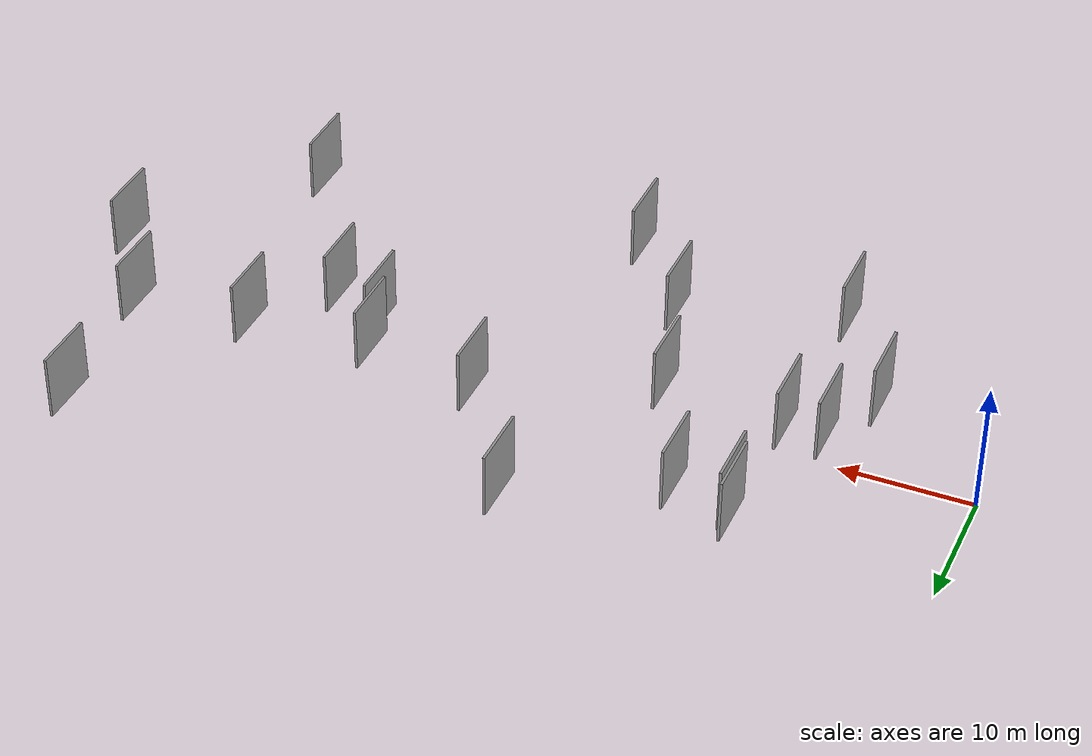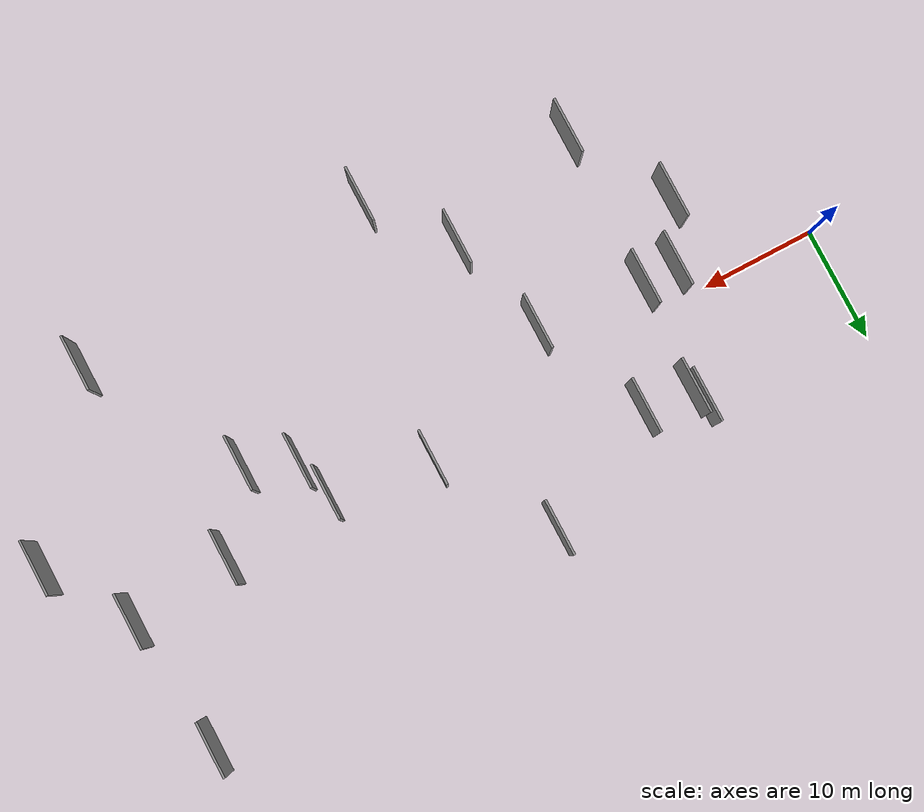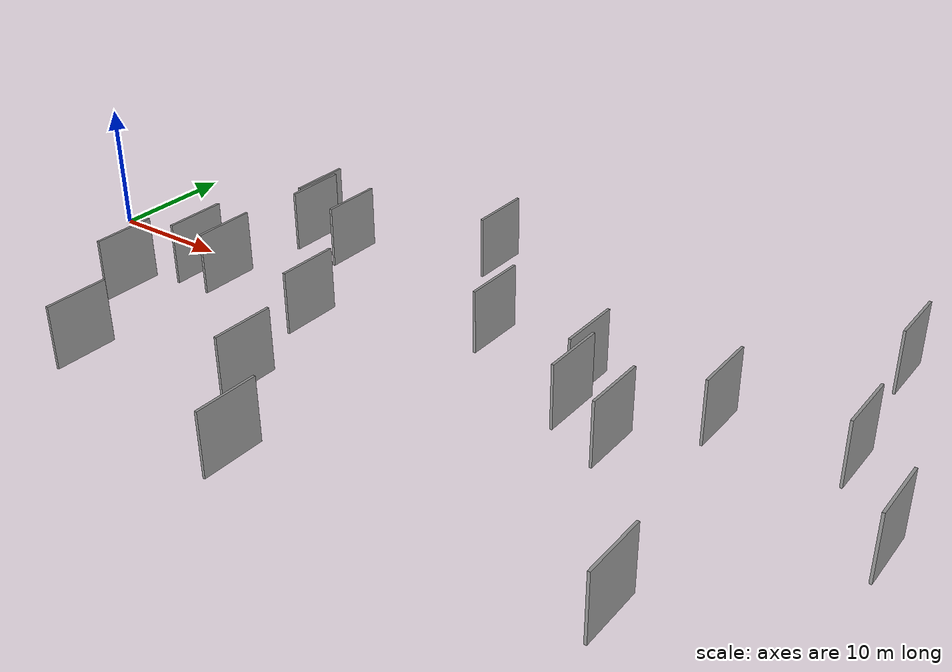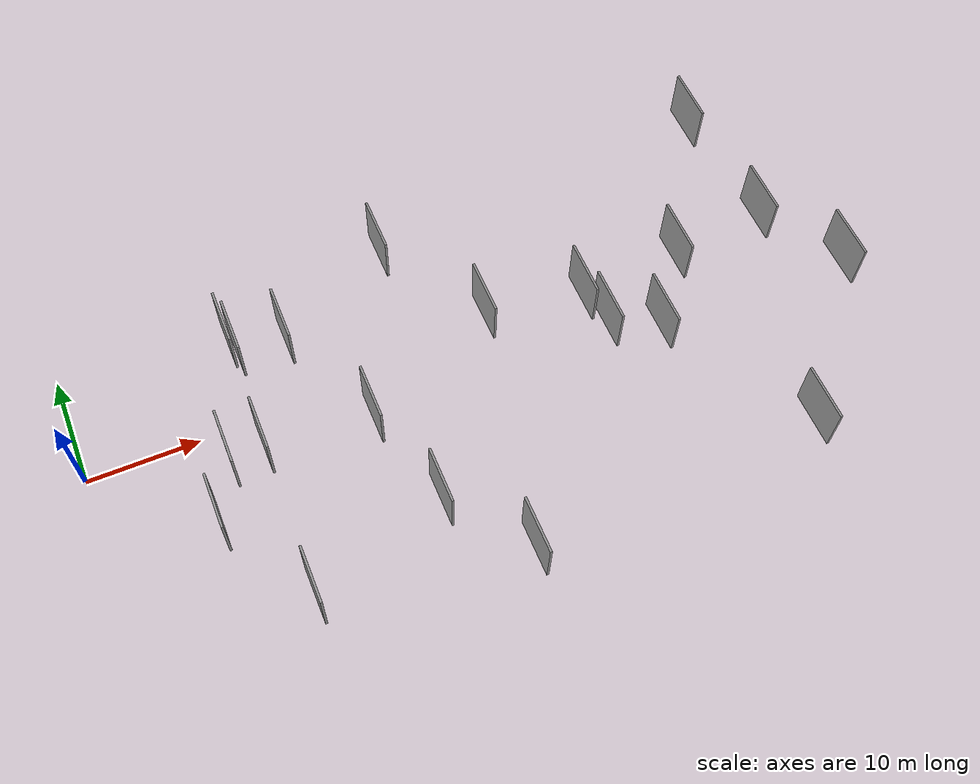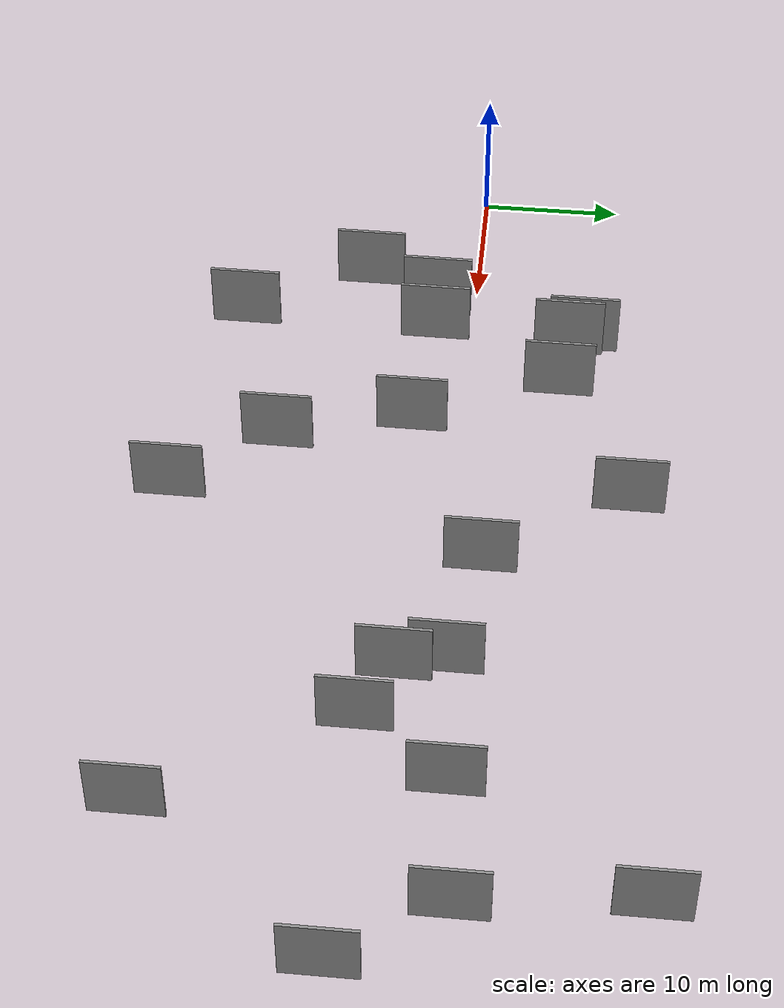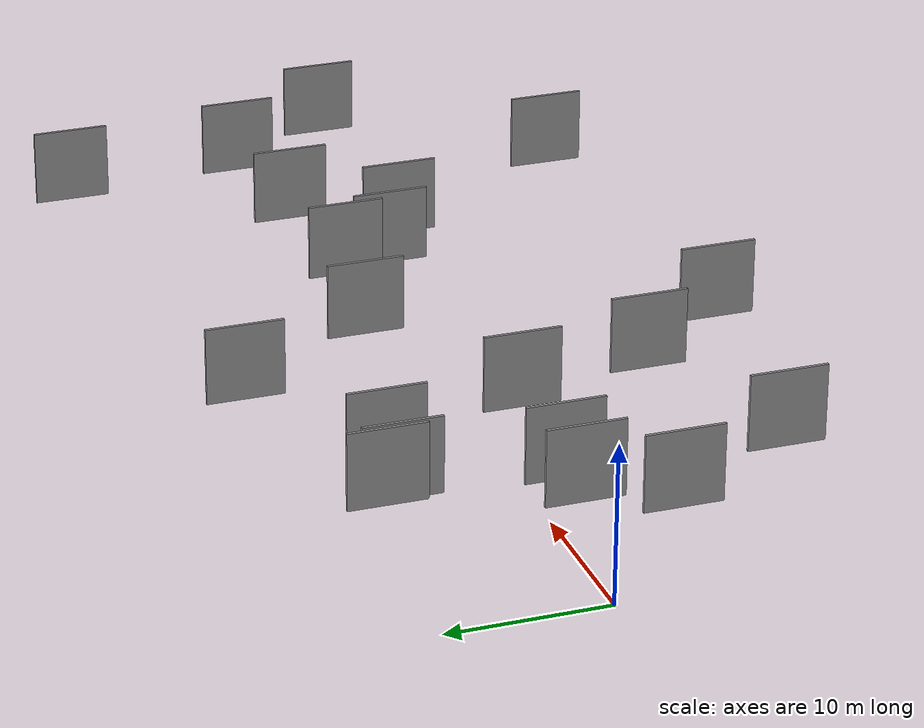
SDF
<sdf version="1.6">
 <world name="default">
  <scene>
   <sky><clouds><speed>12</speed></clouds></sky>
   <ambient>0.4 0.4 0.4 1</ambient>
   <background>0.7 0.7 0.7 1</background>
   <shadows>1</shadows>
  </scene>
  <gravity>0 0 -9.8066</gravity>
  <magnetic_field>6e-06 2.3e-05 -4.2e-05</magnetic_field>
  <physics default="0" name="default_physics" type="ode">
   <ode>
    <solver>
     <type>quick</type>
     <iters>10</iters>
     <sor>1.0</sor>
     <use_dynamic_moi_rescaling>0</use_dynamic_moi_rescaling>
    </solver>
    <constraints>
     <cfm>0</cfm>
     <erp>0.2</erp>
     <contact_max_correcting_vel>100</contact_max_correcting_vel>
     <contact_surface_layer>0.001</contact_surface_layer>
    </constraints>
   </ode>
   <max_step_size>0.004</max_step_size>
   <real_time_factor>1</real_time_factor>
   <real_time_update_rate>250</real_time_update_rate>
  </physics>
  <light name="sun" type="directional">
   <pose>0 0 10 0 0 0</pose>
   <diffuse>0.8 0.8 0.8 1</diffuse>
   <specular>0.2 0.2 0.2 1</specular>
   <attenuation>
    <range>1000</range>
    <constant>0.9</constant>
    <linear>0.01</linear>
    <quadratic>0.001</quadratic>
   </attenuation>
   <direction>-0.5 0.1 -0.9</direction>
  </light>
  <model name="grey_wall_1">
   <static>1</static>
   <pose>55.7279 1.5356 0.0 0.000000 0.000000 1.570796</pose>
   <link name="link">
    <pose>0 0 2.50 0 0 0</pose>
    <collision name="collision"><geometry><box><size>5.00 0.2 5.00</size></box></geometry></collision>
    <visual name="visual">
     <cast_shadows>0</cast_shadows>
     <geometry><box><size>5.00 0.2 5.00</size></box></geometry>
     <material>
      <script>
       <uri>model://grey_wall/materials/scripts</uri>
       <uri>model://grey_wall/materials/textures</uri>
       <name>vrc/grey_wall</name>
      </script>
     </material>
    </visual>
   </link>
  </model>
  <model name="grey_wall_2">
   <static>1</static>
   <pose>37.1053 2.2786 0.0 0.000000 0.000000 1.570796</pose>
   <link name="link">
    <pose>0 0 2.50 0 0 0</pose>
    <collision name="collision"><geometry><box><size>5.00 0.2 5.00</size></box></geometry></collision>
    <visual name="visual">
     <cast_shadows>0</cast_shadows>
     <geometry><box><size>5.00 0.2 5.00</size></box></geometry>
     <material>
      <script>
       <uri>model://grey_wall/materials/scripts</uri>
       <uri>model://grey_wall/materials/textures</uri>
       <name>vrc/grey_wall</name>
      </script>
     </material>
    </visual>
   </link>
  </model>
  <model name="grey_wall_3">
   <static>1</static>
   <pose>24.3750 -3.5481 0.0 0.000000 0.000000 1.570796</pose>
   <link name="link">
    <pose>0 0 2.50 0 0 0</pose>
    <collision name="collision"><geometry><box><size>5.00 0.2 5.00</size></box></geometry></collision>
    <visual name="visual">
     <cast_shadows>0</cast_shadows>
     <geometry><box><size>5.00 0.2 5.00</size></box></geometry>
     <material>
      <script>
       <uri>model://grey_wall/materials/scripts</uri>
       <uri>model://grey_wall/materials/textures</uri>
       <name>vrc/grey_wall</name>
      </script>
     </material>
    </visual>
   </link>
  </model>
  <model name="grey_wall_4">
   <static>1</static>
   <pose>63.5982 14.6535 0.0 0.000000 0.000000 1.570796</pose>
   <link name="link">
    <pose>0 0 2.50 0 0 0</pose>
    <collision name="collision"><geometry><box><size>5.00 0.2 5.00</size></box></geometry></collision>
    <visual name="visual">
     <cast_shadows>0</cast_shadows>
     <geometry><box><size>5.00 0.2 5.00</size></box></geometry>
     <material>
      <script>
       <uri>model://grey_wall/materials/scripts</uri>
       <uri>model://grey_wall/materials/textures</uri>
       <name>vrc/grey_wall</name>
      </script>
     </material>
    </visual>
   </link>
  </model>
  <model name="grey_wall_5">
   <static>1</static>
   <pose>64.8098 2.5495 0.0 0.000000 0.000000 1.570796</pose>
   <link name="link">
    <pose>0 0 2.50 0 0 0</pose>
    <collision name="collision"><geometry><box><size>5.00 0.2 5.00</size></box></geometry></collision>
    <visual name="visual">
     <cast_shadows>0</cast_shadows>
     <geometry><box><size>5.00 0.2 5.00</size></box></geometry>
     <material>
      <script>
       <uri>model://grey_wall/materials/scripts</uri>
       <uri>model://grey_wall/materials/textures</uri>
       <name>vrc/grey_wall</name>
      </script>
     </material>
    </visual>
   </link>
  </model>
  <model name="grey_wall_6">
   <static>1</static>
   <pose>15.4837 7.0637 0.0 0.000000 0.000000 1.570796</pose>
   <link name="link">
    <pose>0 0 2.50 0 0 0</pose>
    <collision name="collision"><geometry><box><size>5.00 0.2 5.00</size></box></geometry></collision>
    <visual name="visual">
     <cast_shadows>0</cast_shadows>
     <geometry><box><size>5.00 0.2 5.00</size></box></geometry>
     <material>
      <script>
       <uri>model://grey_wall/materials/scripts</uri>
       <uri>model://grey_wall/materials/textures</uri>
       <name>vrc/grey_wall</name>
      </script>
     </material>
    </visual>
   </link>
  </model>
  <model name="grey_wall_7">
   <static>1</static>
   <pose>26.9392 -12.7928 0.0 0.000000 0.000000 1.570796</pose>
   <link name="link">
    <pose>0 0 2.50 0 0 0</pose>
    <collision name="collision"><geometry><box><size>5.00 0.2 5.00</size></box></geometry></collision>
    <visual name="visual">
     <cast_shadows>0</cast_shadows>
     <geometry><box><size>5.00 0.2 5.00</size></box></geometry>
     <material>
      <script>
       <uri>model://grey_wall/materials/scripts</uri>
       <uri>model://grey_wall/materials/textures</uri>
       <name>vrc/grey_wall</name>
      </script>
     </material>
    </visual>
   </link>
  </model>
  <model name="grey_wall_8">
   <static>1</static>
   <pose>30.7021 12.0385 0.0 0.000000 0.000000 1.570796</pose>
   <link name="link">
    <pose>0 0 2.50 0 0 0</pose>
    <collision name="collision"><geometry><box><size>5.00 0.2 5.00</size></box></geometry></collision>
    <visual name="visual">
     <cast_shadows>0</cast_shadows>
     <geometry><box><size>5.00 0.2 5.00</size></box></geometry>
     <material>
      <script>
       <uri>model://grey_wall/materials/scripts</uri>
       <uri>model://grey_wall/materials/textures</uri>
       <name>vrc/grey_wall</name>
      </script>
     </material>
    </visual>
   </link>
  </model>
  <model name="grey_wall_9">
   <static>1</static>
   <pose>19.8360 6.5995 0.0 0.000000 0.000000 1.570796</pose>
   <link name="link">
    <pose>0 0 2.50 0 0 0</pose>
    <collision name="collision"><geometry><box><size>5.00 0.2 5.00</size></box></geometry></collision>
    <visual name="visual">
     <cast_shadows>0</cast_shadows>
     <geometry><box><size>5.00 0.2 5.00</size></box></geometry>
     <material>
      <script>
       <uri>model://grey_wall/materials/scripts</uri>
       <uri>model://grey_wall/materials/textures</uri>
       <name>vrc/grey_wall</name>
      </script>
     </material>
    </visual>
   </link>
  </model>
  <model name="grey_wall_10">
   <static>1</static>
   <pose>14.8566 -2.7166 0.0 0.000000 0.000000 1.570796</pose>
   <link name="link">
    <pose>0 0 2.50 0 0 0</pose>
    <collision name="collision"><geometry><box><size>5.00 0.2 5.00</size></box></geometry></collision>
    <visual name="visual">
     <cast_shadows>0</cast_shadows>
     <geometry><box><size>5.00 0.2 5.00</size></box></geometry>
     <material>
      <script>
       <uri>model://grey_wall/materials/scripts</uri>
       <uri>model://grey_wall/materials/textures</uri>
       <name>vrc/grey_wall</name>
      </script>
     </material>
    </visual>
   </link>
  </model>
  <model name="grey_wall_11">
   <static>1</static>
   <pose>9.4200 -7.9619 0.0 0.000000 0.000000 1.570796</pose>
   <link name="link">
    <pose>0 0 2.50 0 0 0</pose>
    <collision name="collision"><geometry><box><size>5.00 0.2 5.00</size></box></geometry></collision>
    <visual name="visual">
     <cast_shadows>0</cast_shadows>
     <geometry><box><size>5.00 0.2 5.00</size></box></geometry>
     <material>
      <script>
       <uri>model://grey_wall/materials/scripts</uri>
       <uri>model://grey_wall/materials/textures</uri>
       <name>vrc/grey_wall</name>
      </script>
     </material>
    </visual>
   </link>
  </model>
  <model name="grey_wall_12">
   <static>1</static>
   <pose>51.2201 -4.6584 0.0 0.000000 0.000000 1.570796</pose>
   <link name="link">
    <pose>0 0 2.50 0 0 0</pose>
    <collision name="collision"><geometry><box><size>5.00 0.2 5.00</size></box></geometry></collision>
    <visual name="visual">
     <cast_shadows>0</cast_shadows>
     <geometry><box><size>5.00 0.2 5.00</size></box></geometry>
     <material>
      <script>
       <uri>model://grey_wall/materials/scripts</uri>
       <uri>model://grey_wall/materials/textures</uri>
       <name>vrc/grey_wall</name>
      </script>
     </material>
    </visual>
   </link>
  </model>
  <model name="grey_wall_13">
   <static>1</static>
   <pose>32.3725 -19.6363 0.0 0.000000 0.000000 1.570796</pose>
   <link name="link">
    <pose>0 0 2.50 0 0 0</pose>
    <collision name="collision"><geometry><box><size>5.00 0.2 5.00</size></box></geometry></collision>
    <visual name="visual">
     <cast_shadows>0</cast_shadows>
     <geometry><box><size>5.00 0.2 5.00</size></box></geometry>
     <material>
      <script>
       <uri>model://grey_wall/materials/scripts</uri>
       <uri>model://grey_wall/materials/textures</uri>
       <name>vrc/grey_wall</name>
      </script>
     </material>
    </visual>
   </link>
  </model>
  <model name="grey_wall_14">
   <static>1</static>
   <pose>14.5596 -16.6720 0.0 0.000000 0.000000 1.570796</pose>
   <link name="link">
    <pose>0 0 2.50 0 0 0</pose>
    <collision name="collision"><geometry><box><size>5.00 0.2 5.00</size></box></geometry></collision>
    <visual name="visual">
     <cast_shadows>0</cast_shadows>
     <geometry><box><size>5.00 0.2 5.00</size></box></geometry>
     <material>
      <script>
       <uri>model://grey_wall/materials/scripts</uri>
       <uri>model://grey_wall/materials/textures</uri>
       <name>vrc/grey_wall</name>
      </script>
     </material>
    </visual>
   </link>
  </model>
  <model name="grey_wall_15">
   <static>1</static>
   <pose>46.8936 -2.6037 0.0 0.000000 0.000000 1.570796</pose>
   <link name="link">
    <pose>0 0 2.50 0 0 0</pose>
    <collision name="collision"><geometry><box><size>5.00 0.2 5.00</size></box></geometry></collision>
    <visual name="visual">
     <cast_shadows>0</cast_shadows>
     <geometry><box><size>5.00 0.2 5.00</size></box></geometry>
     <material>
      <script>
       <uri>model://grey_wall/materials/scripts</uri>
       <uri>model://grey_wall/materials/textures</uri>
       <name>vrc/grey_wall</name>
      </script>
     </material>
    </visual>
   </link>
  </model>
  <model name="grey_wall_16">
   <static>1</static>
   <pose>46.0465 0.7166 0.0 0.000000 0.000000 1.570796</pose>
   <link name="link">
    <pose>0 0 2.50 0 0 0</pose>
    <collision name="collision"><geometry><box><size>5.00 0.2 5.00</size></box></geometry></collision>
    <visual name="visual">
     <cast_shadows>0</cast_shadows>
     <geometry><box><size>5.00 0.2 5.00</size></box></geometry>
     <material>
      <script>
       <uri>model://grey_wall/materials/scripts</uri>
       <uri>model://grey_wall/materials/textures</uri>
       <name>vrc/grey_wall</name>
      </script>
     </material>
    </visual>
   </link>
  </model>
  <model name="grey_wall_17">
   <static>1</static>
   <pose>11.8187 -2.8284 0.0 0.000000 0.000000 1.570796</pose>
   <link name="link">
    <pose>0 0 2.50 0 0 0</pose>
    <collision name="collision"><geometry><box><size>5.00 0.2 5.00</size></box></geometry></collision>
    <visual name="visual">
     <cast_shadows>0</cast_shadows>
     <geometry><box><size>5.00 0.2 5.00</size></box></geometry>
     <material>
      <script>
       <uri>model://grey_wall/materials/scripts</uri>
       <uri>model://grey_wall/materials/textures</uri>
       <name>vrc/grey_wall</name>
      </script>
     </material>
    </visual>
   </link>
  </model>
  <model name="grey_wall_18">
   <static>1</static>
   <pose>69.5611 -4.7737 0.0 0.000000 0.000000 1.570796</pose>
   <link name="link">
    <pose>0 0 2.50 0 0 0</pose>
    <collision name="collision"><geometry><box><size>5.00 0.2 5.00</size></box></geometry></collision>
    <visual name="visual">
     <cast_shadows>0</cast_shadows>
     <geometry><box><size>5.00 0.2 5.00</size></box></geometry>
     <material>
      <script>
       <uri>model://grey_wall/materials/scripts</uri>
       <uri>model://grey_wall/materials/textures</uri>
       <name>vrc/grey_wall</name>
      </script>
     </material>
    </visual>
   </link>
  </model>
  <model name="grey_wall_19">
   <static>1</static>
   <pose>59.2089 -18.0524 0.0 0.000000 0.000000 1.570796</pose>
   <link name="link">
    <pose>0 0 2.50 0 0 0</pose>
    <collision name="collision"><geometry><box><size>5.00 0.2 5.00</size></box></geometry></collision>
    <visual name="visual">
     <cast_shadows>0</cast_shadows>
     <geometry><box><size>5.00 0.2 5.00</size></box></geometry>
     <material>
      <script>
       <uri>model://grey_wall/materials/scripts</uri>
       <uri>model://grey_wall/materials/textures</uri>
       <name>vrc/grey_wall</name>
      </script>
     </material>
    </visual>
   </link>
  </model>
  <model name="grey_wall_20">
   <static>1</static>
   <pose>15.0467 8.1284 0.0 0.000000 0.000000 1.570796</pose>
   <link name="link">
    <pose>0 0 2.50 0 0 0</pose>
    <collision name="collision"><geometry><box><size>5.00 0.2 5.00</size></box></geometry></collision>
    <visual name="visual">
     <cast_shadows>0</cast_shadows>
     <geometry><box><size>5.00 0.2 5.00</size></box></geometry>
     <material>
      <script>
       <uri>model://grey_wall/materials/scripts</uri>
       <uri>model://grey_wall/materials/textures</uri>
       <name>vrc/grey_wall</name>
      </script>
     </material>
    </visual>
   </link>
  </model>
 </world>
</sdf>
